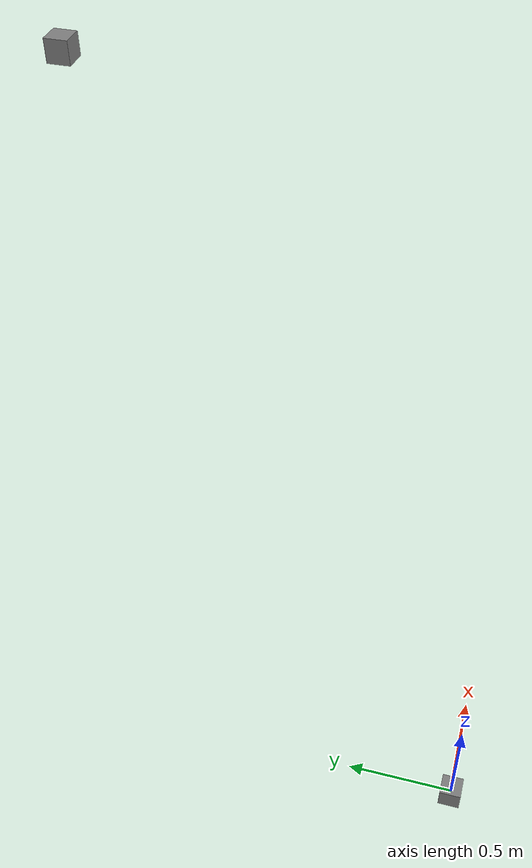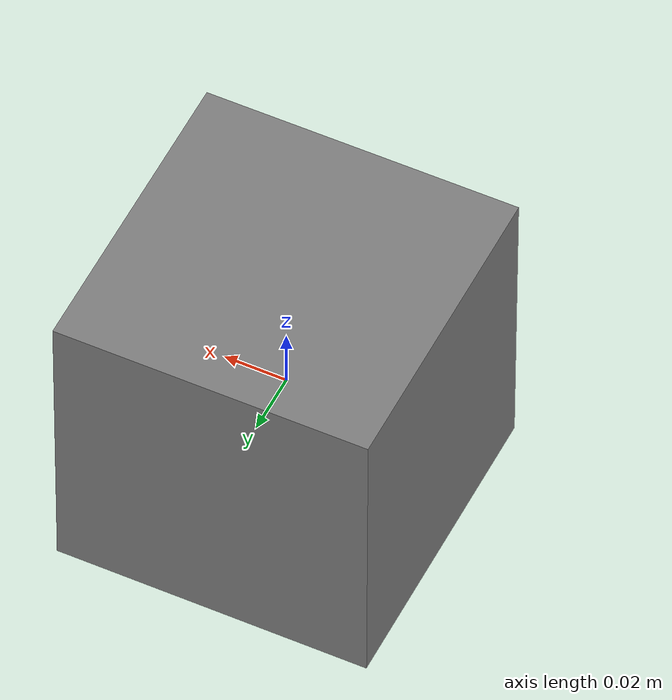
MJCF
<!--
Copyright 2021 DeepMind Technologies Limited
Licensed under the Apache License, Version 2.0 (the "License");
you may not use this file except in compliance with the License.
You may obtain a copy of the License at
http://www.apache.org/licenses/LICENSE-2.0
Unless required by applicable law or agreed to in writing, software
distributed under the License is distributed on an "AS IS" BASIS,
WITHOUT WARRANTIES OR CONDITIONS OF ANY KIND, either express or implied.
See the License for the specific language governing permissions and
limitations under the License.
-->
<mujoco>
  <!--
  body2 is held by body1 through the weld constraint, so the force sensor on body1
  should register -2*gravity (for the weight of both bodies).
  -->
  <option gravity="1 2 3"/>

  <default>
    <!-- A cube of size 0.1^3 with density of 1000 has mass of 1. -->
    <geom density="1000" size="0.05 0.05 0.05" type="box"/>
  </default>

  <worldbody>
    <body name="body1">
      <geom/>
      <site name="sensor"/>
    </body>
    <body name="body2" pos="1 2 3">
      <joint type="free"/>
      <geom/>
    </body>
  </worldbody>

  <equality>
    <weld body1="body1" body2="body2" anchor="0 0 0" torquescale="0"/>
  </equality>

  <sensor>
    <force site="sensor" user="-2 -4 -6"/>
  </sensor>
</mujoco>
